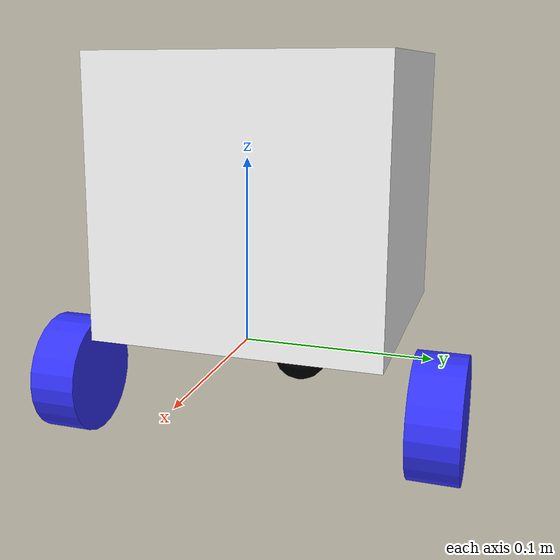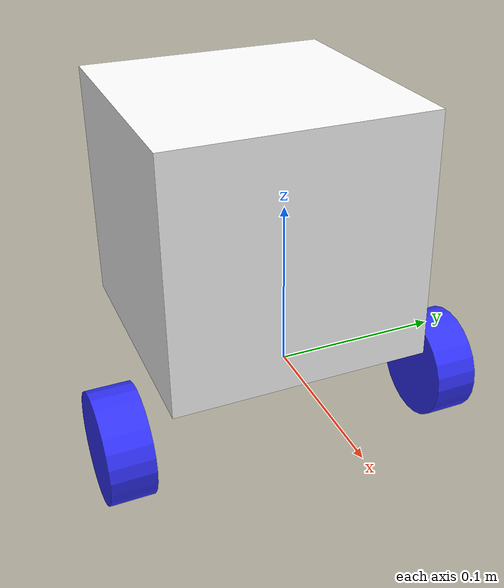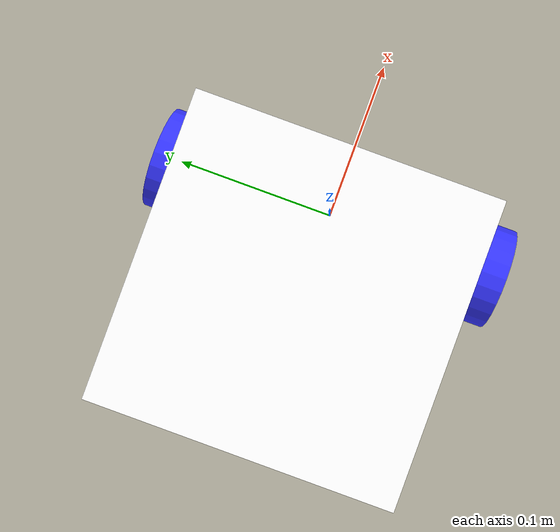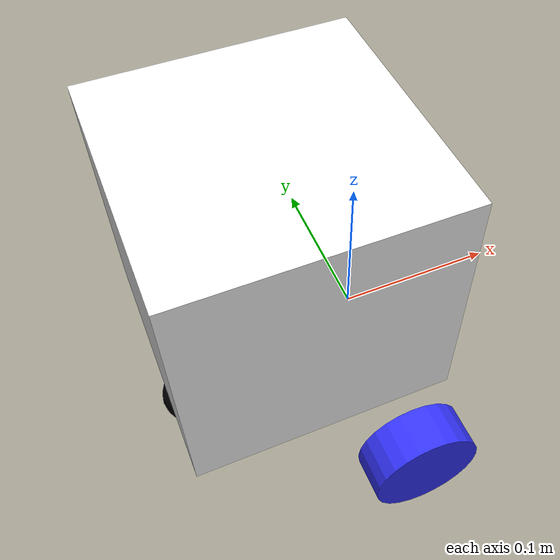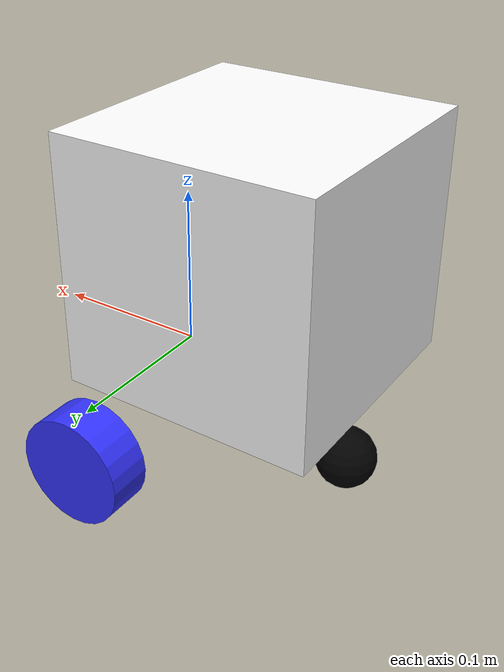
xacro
<?xml version="1.0"?>
<robot xmlns:xacro="http://www.ros.org/wiki/xacro"  name="robot">
    <xacro:include filename="materials.xacro"/>
    <xacro:include filename="inertial_macros.xacro"/>
    <xacro:include filename="global_properties.xacro"/>

    <link name="base_link"/>

    <joint name="base_footprint_joint" type="fixed">
        <parent link="base_link"/>
        <child link="base_footprint"/>
        <origin xyz="0 0 0" rpy="0 0 0"/>
    </joint>

    <link name="base_footprint">
    </link>

    <!-- Main Stack Link -->

    <joint name="main_stack_joint" type="fixed">
        <parent link="base_link"/>
        <child link="main_stack"/>
        <origin xyz="0 0 0"/>
    </joint>

    <link name="main_stack">
        <visual>
            <origin xyz="-0.05 0 ${chassis_height/2}"/>
            <geometry>
                <box size="${chassis_length} ${chassis_width} ${chassis_height}"/>
            </geometry>
            <material name="white"/>
        </visual>
        <collision>
            <origin xyz="-0.05 0 ${chassis_height/2}"/>
            <geometry>
                <box size="${chassis_length} ${chassis_width} ${chassis_height}"/>
            </geometry>
        </collision>
        <xacro:inertial_box mass="0.5" x="${chassis_length}" y="${chassis_width}" z="${chassis_height}">
            <origin xyz="-0.05 0 ${chassis_height/2}" rpy="0 0 0"/>
        </xacro:inertial_box>
    </link>

    <gazebo reference="main_stack">
        <material>Gazebo/White</material>
    </gazebo>

    <!-- LEFT WHEEL LINK -->
    <joint name="left_wheel_joint" type="continuous">
        <parent link="base_link"/>
        <child link="left_wheel"/>
        <origin xyz="${wheel_offset_x} ${wheel_offset_y} ${wheel_offset_z}" rpy="-${pi/2} 0 0"/>
        <axis xyz="0 0 1"/>
    </joint>

    <link name="left_wheel">
        <visual>
            <geometry>
                <cylinder radius="${wheel_diameter/2}" length="${wheel_thickness}"/>
            </geometry>
            <material name="blue"/>
        </visual>
        <collision>
            <geometry>
                <sphere radius="${wheel_diameter/2}"/>
            </geometry>
        </collision>
        <xacro:inertial_cylinder mass="${wheel_mass}" radius="${wheel_diameter/2}" length="${wheel_thickness}">
            <origin xyz="0 0 0" rpy="0 0 0"/>
        </xacro:inertial_cylinder>
    </link>

    <gazebo reference="left_wheel">
        <material>Gazebo/Blue</material>
    </gazebo>

    <!-- RIGHT WHEEL LINK -->

    <joint name="right_wheel_joint" type="continuous">
        <parent link="base_link"/>
        <child link="right_wheel"/>
        <origin xyz="${wheel_offset_x} ${-wheel_offset_y} ${wheel_offset_z}" rpy="${pi/2} 0 0"/>
        <axis xyz="0 0 -1"/>
    </joint>

    <link name="right_wheel">
        <visual>
            <geometry>
                <cylinder radius="${wheel_diameter/2}" length="${wheel_thickness}"/>
            </geometry>
            <material name="blue"/>
        </visual>
        <collision>
            <geometry>
                <sphere radius="${wheel_diameter/2}"/>
            </geometry>
        </collision>
        <xacro:inertial_cylinder mass="${wheel_mass}" radius="${wheel_diameter/2}" length="${wheel_thickness}">
            <origin xyz="0 0 0" rpy="0 0 0"/>
        </xacro:inertial_cylinder>
    </link>

    <gazebo reference="right_wheel">
        <material>Gazebo/Blue</material>
    </gazebo>

    <!-- CASTER WHEEL LINK -->
    <joint name="caster_wheel_link" type="fixed">
        <parent link="main_stack"/>
        <child link="caster_wheel"/>
        <origin xyz="${caster_wheel_offset_x} 0 ${caster_wheel_offset_z}"/>
    </joint>

    <link name="caster_wheel">
        <visual>
            <geometry>
                <sphere radius="${caster_wheel_diameter/2}"/>
            </geometry>
            <material name="black"/>
        </visual>
        <collision>
            <geometry>
                <sphere radius="${caster_wheel_diameter/2}"/>
            </geometry>
        </collision>
        <xacro:inertial_sphere mass="${caster_wheel_mass}" radius="${caster_wheel_diameter/2}">
            <origin xyz="0 0 0" rpy="0 0 0"/>
        </xacro:inertial_sphere>
    </link>

    <gazebo reference="caster_wheel">
        <material>Gazebo/Black</material>
        <mu1 value="0.0001"/>
        <mu2 value="0.0001"/>
    </gazebo>
</robot>

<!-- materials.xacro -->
<robot xmlns:xacro="http://www.ros.org/wiki/xacro">
    <material name="white">
        <color rgba="1 1 1 1" />
    </material>

    <material name="red">
        <color rgba="1 0 0 1" />
    </material>

    <material name="orange">
        <color rgba="1 0.3 0.1 1"/>
    </material>

    <material name="blue">
        <color rgba="0.2 0.2 1 1"/>
    </material>

    <material name="black">
        <color rgba="0 0 0 1"/>
    </material>
</robot>

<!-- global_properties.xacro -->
<robot xmlns:xacro="http://www.ros.org/wiki/xacro">
    <xacro:property name="chassis_length" value="0.160"/>
    <xacro:property name="chassis_width" value="0.160"/>
    <xacro:property name="chassis_height" value="0.155"/>
    <xacro:property name="chassis_mass" value="1.5"/>
    <xacro:property name='wheel_diameter' value='0.0675'/>
    <xacro:property name="wheel_thickness" value="0.027"/>
    <xacro:property name="wheel_mass" value="0.05"/>
    <xacro:property name="wheel_offset_x" value="0.0"/>
    <xacro:property name="wheel_offset_y" value="0.105"/> <!-- Offset is slightly lower than the wheel center to account for wheel pointof contact -->
    <xacro:property name="wheel_offset_z" value="-0.031"/>
    <xacro:property name="caster_wheel_diameter" value="0.038"/>
    <xacro:property name="caster_wheel_mass" value="0.01"/>
    <xacro:property name="caster_wheel_offset_x" value="-0.1146"/>
    <xacro:property name="caster_wheel_offset_z" value="${wheel_offset_z - wheel_diameter/2 + caster_wheel_diameter/2}"/>

    <xacro:property name="camera_length" value="0.013"/>
    <xacro:property name="camera_width" value="0.025"/>
    <xacro:property name="camera_height" value="0.024"/>
    <xacro:property name="camera_fov_deg" value="77"/>

    <xacro:property name="tof_camera_length" value="0.020" />
    <xacro:property name="tof_camera_width" value="0.040" />
    <xacro:property name="tof_camera_height" value="0.020" />
    <!-- The horizontal FOV for the 100x100 mode is typically around 80-90 degrees.
         We can calculate it from the intrinsics if needed, but 85 is a good start. -->
    <xacro:property name="tof_camera_fov_deg" value="85.0" />
</robot>
